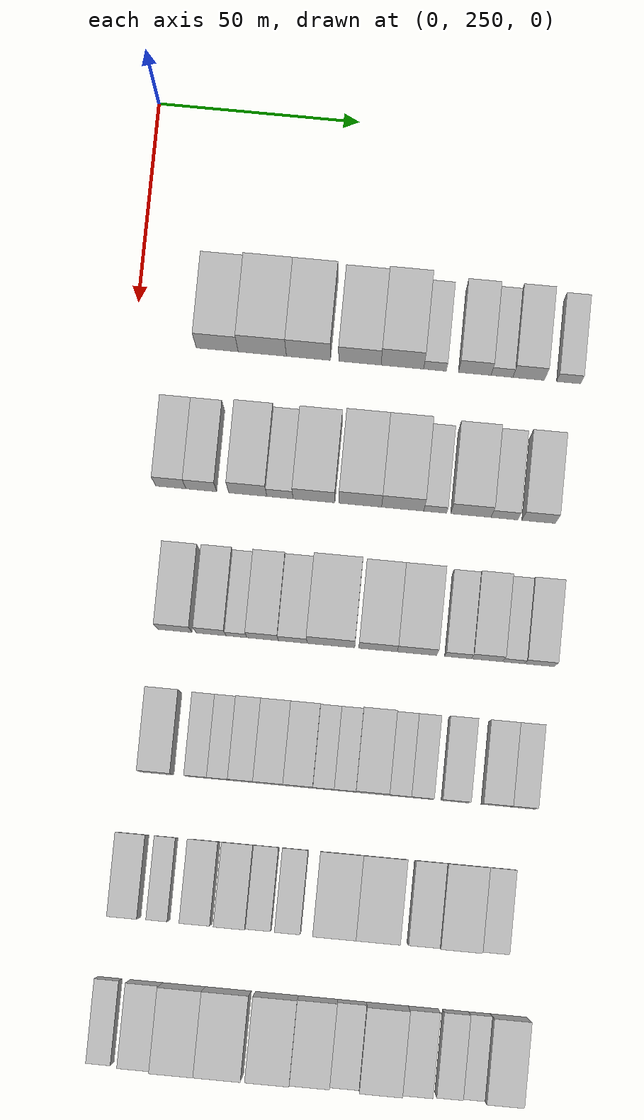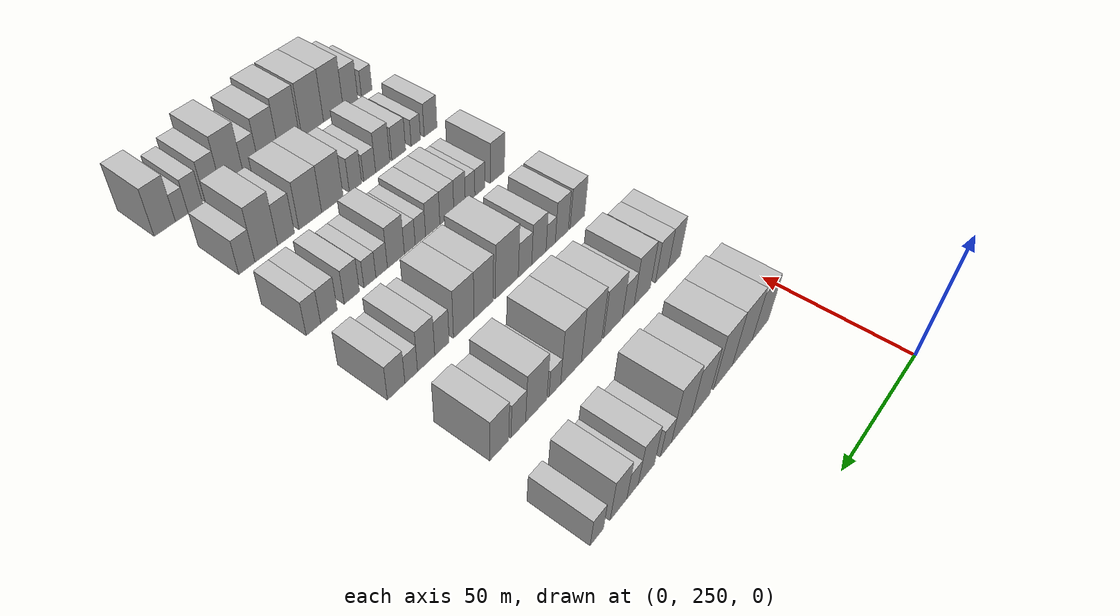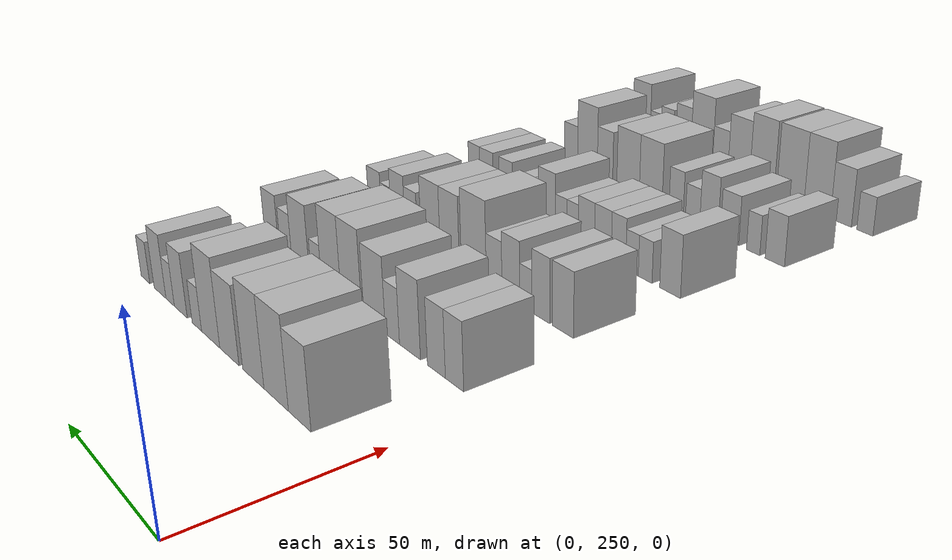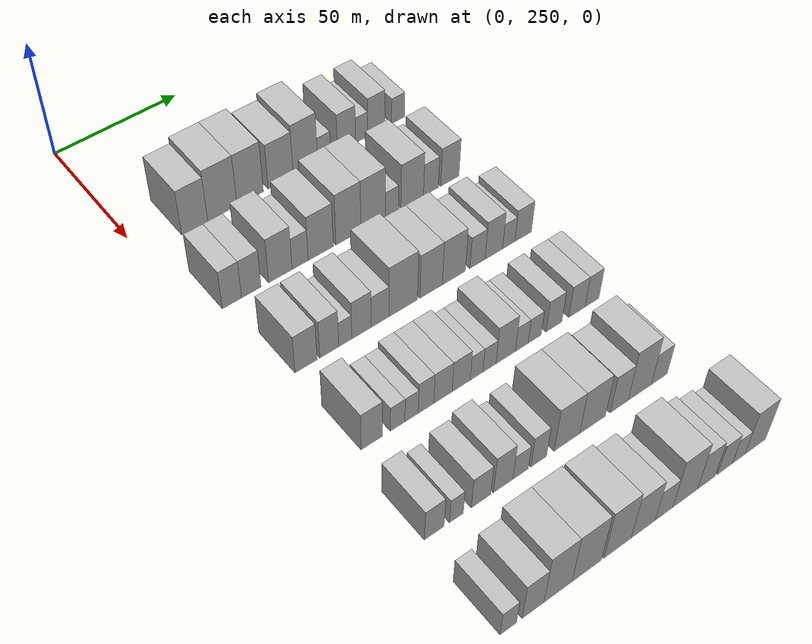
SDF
<sdf version="1.6">
 <world name="default">
  <model name="building_95">
   <static>1</static>
   <pose>50.0000 270.3964 0 0.000000 0.000000 0.000000</pose>
   <link name="link">
    <pose>0 0 10.50 0 0 0</pose>
    <collision name="collision"><geometry><box><size>20.0000 10.3634 21.0000</size></box></geometry></collision>
    <visual name="visual">
     <cast_shadows>0</cast_shadows>
     <geometry><box><size>20.0000 10.3634 21.0000</size></box></geometry>
     <material>
      <script>
       <uri>model://HANNAS_wall/materials/scripts</uri>
       <uri>model://HANNAS_wall/materials/textures</uri>
       <name>vrc/HANNAS_wall</name>
      </script>
     </material>
    </visual>
   </link>
  </model>
  <model name="building_96">
   <static>1</static>
   <pose>50.0000 281.5290 0 0.000000 0.000000 0.000000</pose>
   <link name="link">
    <pose>0 0 12.00 0 0 0</pose>
    <collision name="collision"><geometry><box><size>20.0000 11.9018 24.0000</size></box></geometry></collision>
    <visual name="visual">
     <cast_shadows>0</cast_shadows>
     <geometry><box><size>20.0000 11.9018 24.0000</size></box></geometry>
     <material>
      <script>
       <uri>model://HANNAS_wall/materials/scripts</uri>
       <uri>model://HANNAS_wall/materials/textures</uri>
       <name>vrc/HANNAS_wall</name>
      </script>
     </material>
    </visual>
   </link>
  </model>
  <model name="building_97">
   <static>1</static>
   <pose>50.0000 292.9263 0 0.000000 0.000000 0.000000</pose>
   <link name="link">
    <pose>0 0 12.00 0 0 0</pose>
    <collision name="collision"><geometry><box><size>20.0000 10.8927 24.0000</size></box></geometry></collision>
    <visual name="visual">
     <cast_shadows>0</cast_shadows>
     <geometry><box><size>20.0000 10.8927 24.0000</size></box></geometry>
     <material>
      <script>
       <uri>model://HANNAS_wall/materials/scripts</uri>
       <uri>model://HANNAS_wall/materials/textures</uri>
       <name>vrc/HANNAS_wall</name>
      </script>
     </material>
    </visual>
   </link>
  </model>
  <model name="building_98">
   <static>1</static>
   <pose>50.0000 305.6164 0 0.000000 0.000000 0.000000</pose>
   <link name="link">
    <pose>0 0 10.50 0 0 0</pose>
    <collision name="collision"><geometry><box><size>20.0000 10.4875 21.0000</size></box></geometry></collision>
    <visual name="visual">
     <cast_shadows>0</cast_shadows>
     <geometry><box><size>20.0000 10.4875 21.0000</size></box></geometry>
     <material>
      <script>
       <uri>model://HANNAS_wall/materials/scripts</uri>
       <uri>model://HANNAS_wall/materials/textures</uri>
       <name>vrc/HANNAS_wall</name>
      </script>
     </material>
    </visual>
   </link>
  </model>
  <model name="building_99">
   <static>1</static>
   <pose>50.0000 316.0999 0 0.000000 0.000000 0.000000</pose>
   <link name="link">
    <pose>0 0 12.00 0 0 0</pose>
    <collision name="collision"><geometry><box><size>20.0000 10.4796 24.0000</size></box></geometry></collision>
    <visual name="visual">
     <cast_shadows>0</cast_shadows>
     <geometry><box><size>20.0000 10.4796 24.0000</size></box></geometry>
     <material>
      <script>
       <uri>model://HANNAS_wall/materials/scripts</uri>
       <uri>model://HANNAS_wall/materials/textures</uri>
       <name>vrc/HANNAS_wall</name>
      </script>
     </material>
    </visual>
   </link>
  </model>
  <model name="building_100">
   <static>1</static>
   <pose>50.0000 324.1457 0 0.000000 0.000000 0.000000</pose>
   <link name="link">
    <pose>0 0 6.00 0 0 0</pose>
    <collision name="collision"><geometry><box><size>20.0000 5.6118 12.0000</size></box></geometry></collision>
    <visual name="visual">
     <cast_shadows>0</cast_shadows>
     <geometry><box><size>20.0000 5.6118 12.0000</size></box></geometry>
     <material>
      <script>
       <uri>model://HANNAS_wall/materials/scripts</uri>
       <uri>model://HANNAS_wall/materials/textures</uri>
       <name>vrc/HANNAS_wall</name>
      </script>
     </material>
    </visual>
   </link>
  </model>
  <model name="building_101">
   <static>1</static>
   <pose>50.0000 333.9687 0 0.000000 0.000000 0.000000</pose>
   <link name="link">
    <pose>0 0 9.00 0 0 0</pose>
    <collision name="collision"><geometry><box><size>20.0000 8.0344 18.0000</size></box></geometry></collision>
    <visual name="visual">
     <cast_shadows>0</cast_shadows>
     <geometry><box><size>20.0000 8.0344 18.0000</size></box></geometry>
     <material>
      <script>
       <uri>model://HANNAS_wall/materials/scripts</uri>
       <uri>model://HANNAS_wall/materials/textures</uri>
       <name>vrc/HANNAS_wall</name>
      </script>
     </material>
    </visual>
   </link>
  </model>
  <model name="building_102">
   <static>1</static>
   <pose>50.0000 340.6855 0 0.000000 0.000000 0.000000</pose>
   <link name="link">
    <pose>0 0 6.00 0 0 0</pose>
    <collision name="collision"><geometry><box><size>20.0000 5.3991 12.0000</size></box></geometry></collision>
    <visual name="visual">
     <cast_shadows>0</cast_shadows>
     <geometry><box><size>20.0000 5.3991 12.0000</size></box></geometry>
     <material>
      <script>
       <uri>model://HANNAS_wall/materials/scripts</uri>
       <uri>model://HANNAS_wall/materials/textures</uri>
       <name>vrc/HANNAS_wall</name>
      </script>
     </material>
    </visual>
   </link>
  </model>
  <model name="building_103">
   <static>1</static>
   <pose>50.0000 347.2678 0 0.000000 0.000000 0.000000</pose>
   <link name="link">
    <pose>0 0 9.00 0 0 0</pose>
    <collision name="collision"><geometry><box><size>20.0000 7.7656 18.0000</size></box></geometry></collision>
    <visual name="visual">
     <cast_shadows>0</cast_shadows>
     <geometry><box><size>20.0000 7.7656 18.0000</size></box></geometry>
     <material>
      <script>
       <uri>model://HANNAS_wall/materials/scripts</uri>
       <uri>model://HANNAS_wall/materials/textures</uri>
       <name>vrc/HANNAS_wall</name>
      </script>
     </material>
    </visual>
   </link>
  </model>
  <model name="building_104">
   <static>1</static>
   <pose>50.0000 357.1122 0 0.000000 0.000000 0.000000</pose>
   <link name="link">
    <pose>0 0 6.00 0 0 0</pose>
    <collision name="collision"><geometry><box><size>20.0000 5.9231 12.0000</size></box></geometry></collision>
    <visual name="visual">
     <cast_shadows>0</cast_shadows>
     <geometry><box><size>20.0000 5.9231 12.0000</size></box></geometry>
     <material>
      <script>
       <uri>model://HANNAS_wall/materials/scripts</uri>
       <uri>model://HANNAS_wall/materials/textures</uri>
       <name>vrc/HANNAS_wall</name>
      </script>
     </material>
    </visual>
   </link>
  </model>
  <model name="building_224">
   <static>1</static>
   <pose>85.0000 262.4137 0 0.000000 0.000000 0.000000</pose>
   <link name="link">
    <pose>0 0 9.00 0 0 0</pose>
    <collision name="collision"><geometry><box><size>20.0000 7.4490 18.0000</size></box></geometry></collision>
    <visual name="visual">
     <cast_shadows>0</cast_shadows>
     <geometry><box><size>20.0000 7.4490 18.0000</size></box></geometry>
     <material>
      <script>
       <uri>model://HANNAS_wall/materials/scripts</uri>
       <uri>model://HANNAS_wall/materials/textures</uri>
       <name>vrc/HANNAS_wall</name>
      </script>
     </material>
    </visual>
   </link>
  </model>
  <model name="building_225">
   <static>1</static>
   <pose>85.0000 269.9247 0 0.000000 0.000000 0.000000</pose>
   <link name="link">
    <pose>0 0 9.00 0 0 0</pose>
    <collision name="collision"><geometry><box><size>20.0000 7.5731 18.0000</size></box></geometry></collision>
    <visual name="visual">
     <cast_shadows>0</cast_shadows>
     <geometry><box><size>20.0000 7.5731 18.0000</size></box></geometry>
     <material>
      <script>
       <uri>model://HANNAS_wall/materials/scripts</uri>
       <uri>model://HANNAS_wall/materials/textures</uri>
       <name>vrc/HANNAS_wall</name>
      </script>
     </material>
    </visual>
   </link>
  </model>
  <model name="building_226">
   <static>1</static>
   <pose>85.0000 281.3738 0 0.000000 0.000000 0.000000</pose>
   <link name="link">
    <pose>0 0 10.50 0 0 0</pose>
    <collision name="collision"><geometry><box><size>20.0000 9.3250 21.0000</size></box></geometry></collision>
    <visual name="visual">
     <cast_shadows>0</cast_shadows>
     <geometry><box><size>20.0000 9.3250 21.0000</size></box></geometry>
     <material>
      <script>
       <uri>model://HANNAS_wall/materials/scripts</uri>
       <uri>model://HANNAS_wall/materials/textures</uri>
       <name>vrc/HANNAS_wall</name>
      </script>
     </material>
    </visual>
   </link>
  </model>
  <model name="building_227">
   <static>1</static>
   <pose>85.0000 289.2687 0 0.000000 0.000000 0.000000</pose>
   <link name="link">
    <pose>0 0 7.50 0 0 0</pose>
    <collision name="collision"><geometry><box><size>20.0000 6.4648 15.0000</size></box></geometry></collision>
    <visual name="visual">
     <cast_shadows>0</cast_shadows>
     <geometry><box><size>20.0000 6.4648 15.0000</size></box></geometry>
     <material>
      <script>
       <uri>model://HANNAS_wall/materials/scripts</uri>
       <uri>model://HANNAS_wall/materials/textures</uri>
       <name>vrc/HANNAS_wall</name>
      </script>
     </material>
    </visual>
   </link>
  </model>
  <model name="building_228">
   <static>1</static>
   <pose>85.0000 297.6382 0 0.000000 0.000000 0.000000</pose>
   <link name="link">
    <pose>0 0 10.50 0 0 0</pose>
    <collision name="collision"><geometry><box><size>20.0000 10.2743 21.0000</size></box></geometry></collision>
    <visual name="visual">
     <cast_shadows>0</cast_shadows>
     <geometry><box><size>20.0000 10.2743 21.0000</size></box></geometry>
     <material>
      <script>
       <uri>model://HANNAS_wall/materials/scripts</uri>
       <uri>model://HANNAS_wall/materials/textures</uri>
       <name>vrc/HANNAS_wall</name>
      </script>
     </material>
    </visual>
   </link>
  </model>
  <model name="building_229">
   <static>1</static>
   <pose>85.0000 309.0094 0 0.000000 0.000000 0.000000</pose>
   <link name="link">
    <pose>0 0 12.00 0 0 0</pose>
    <collision name="collision"><geometry><box><size>20.0000 10.4681 24.0000</size></box></geometry></collision>
    <visual name="visual">
     <cast_shadows>0</cast_shadows>
     <geometry><box><size>20.0000 10.4681 24.0000</size></box></geometry>
     <material>
      <script>
       <uri>model://HANNAS_wall/materials/scripts</uri>
       <uri>model://HANNAS_wall/materials/textures</uri>
       <name>vrc/HANNAS_wall</name>
      </script>
     </material>
    </visual>
   </link>
  </model>
  <model name="building_230">
   <static>1</static>
   <pose>85.0000 319.4148 0 0.000000 0.000000 0.000000</pose>
   <link name="link">
    <pose>0 0 12.00 0 0 0</pose>
    <collision name="collision"><geometry><box><size>20.0000 10.3427 24.0000</size></box></geometry></collision>
    <visual name="visual">
     <cast_shadows>0</cast_shadows>
     <geometry><box><size>20.0000 10.3427 24.0000</size></box></geometry>
     <material>
      <script>
       <uri>model://HANNAS_wall/materials/scripts</uri>
       <uri>model://HANNAS_wall/materials/textures</uri>
       <name>vrc/HANNAS_wall</name>
      </script>
     </material>
    </visual>
   </link>
  </model>
  <model name="building_231">
   <static>1</static>
   <pose>85.0000 327.4046 0 0.000000 0.000000 0.000000</pose>
   <link name="link">
    <pose>0 0 6.00 0 0 0</pose>
    <collision name="collision"><geometry><box><size>20.0000 5.6370 12.0000</size></box></geometry></collision>
    <visual name="visual">
     <cast_shadows>0</cast_shadows>
     <geometry><box><size>20.0000 5.6370 12.0000</size></box></geometry>
     <material>
      <script>
       <uri>model://HANNAS_wall/materials/scripts</uri>
       <uri>model://HANNAS_wall/materials/textures</uri>
       <name>vrc/HANNAS_wall</name>
      </script>
     </material>
    </visual>
   </link>
  </model>
  <model name="building_232">
   <static>1</static>
   <pose>85.0000 336.1703 0 0.000000 0.000000 0.000000</pose>
   <link name="link">
    <pose>0 0 10.50 0 0 0</pose>
    <collision name="collision"><geometry><box><size>20.0000 9.8945 21.0000</size></box></geometry></collision>
    <visual name="visual">
     <cast_shadows>0</cast_shadows>
     <geometry><box><size>20.0000 9.8945 21.0000</size></box></geometry>
     <material>
      <script>
       <uri>model://HANNAS_wall/materials/scripts</uri>
       <uri>model://HANNAS_wall/materials/textures</uri>
       <name>vrc/HANNAS_wall</name>
      </script>
     </material>
    </visual>
   </link>
  </model>
  <model name="building_233">
   <static>1</static>
   <pose>85.0000 344.4108 0 0.000000 0.000000 0.000000</pose>
   <link name="link">
    <pose>0 0 7.50 0 0 0</pose>
    <collision name="collision"><geometry><box><size>20.0000 6.5864 15.0000</size></box></geometry></collision>
    <visual name="visual">
     <cast_shadows>0</cast_shadows>
     <geometry><box><size>20.0000 6.5864 15.0000</size></box></geometry>
     <material>
      <script>
       <uri>model://HANNAS_wall/materials/scripts</uri>
       <uri>model://HANNAS_wall/materials/textures</uri>
       <name>vrc/HANNAS_wall</name>
      </script>
     </material>
    </visual>
   </link>
  </model>
  <model name="building_234">
   <static>1</static>
   <pose>85.0000 352.8083 0 0.000000 0.000000 0.000000</pose>
   <link name="link">
    <pose>0 0 9.00 0 0 0</pose>
    <collision name="collision"><geometry><box><size>20.0000 8.2086 18.0000</size></box></geometry></collision>
    <visual name="visual">
     <cast_shadows>0</cast_shadows>
     <geometry><box><size>20.0000 8.2086 18.0000</size></box></geometry>
     <material>
      <script>
       <uri>model://HANNAS_wall/materials/scripts</uri>
       <uri>model://HANNAS_wall/materials/textures</uri>
       <name>vrc/HANNAS_wall</name>
      </script>
     </material>
    </visual>
   </link>
  </model>
  <model name="building_353">
   <static>1</static>
   <pose>120.0000 266.9054 0 0.000000 0.000000 0.000000</pose>
   <link name="link">
    <pose>0 0 9.00 0 0 0</pose>
    <collision name="collision"><geometry><box><size>20.0000 8.4240 18.0000</size></box></geometry></collision>
    <visual name="visual">
     <cast_shadows>0</cast_shadows>
     <geometry><box><size>20.0000 8.4240 18.0000</size></box></geometry>
     <material>
      <script>
       <uri>model://HANNAS_wall/materials/scripts</uri>
       <uri>model://HANNAS_wall/materials/textures</uri>
       <name>vrc/HANNAS_wall</name>
      </script>
     </material>
    </visual>
   </link>
  </model>
  <model name="building_354">
   <static>1</static>
   <pose>120.0000 275.7824 0 0.000000 0.000000 0.000000</pose>
   <link name="link">
    <pose>0 0 9.00 0 0 0</pose>
    <collision name="collision"><geometry><box><size>20.0000 7.3300 18.0000</size></box></geometry></collision>
    <visual name="visual">
     <cast_shadows>0</cast_shadows>
     <geometry><box><size>20.0000 7.3300 18.0000</size></box></geometry>
     <material>
      <script>
       <uri>model://HANNAS_wall/materials/scripts</uri>
       <uri>model://HANNAS_wall/materials/textures</uri>
       <name>vrc/HANNAS_wall</name>
      </script>
     </material>
    </visual>
   </link>
  </model>
  <model name="building_355">
   <static>1</static>
   <pose>120.0000 282.0024 0 0.000000 0.000000 0.000000</pose>
   <link name="link">
    <pose>0 0 6.00 0 0 0</pose>
    <collision name="collision"><geometry><box><size>20.0000 5.1100 12.0000</size></box></geometry></collision>
    <visual name="visual">
     <cast_shadows>0</cast_shadows>
     <geometry><box><size>20.0000 5.1100 12.0000</size></box></geometry>
     <material>
      <script>
       <uri>model://HANNAS_wall/materials/scripts</uri>
       <uri>model://HANNAS_wall/materials/textures</uri>
       <name>vrc/HANNAS_wall</name>
      </script>
     </material>
    </visual>
   </link>
  </model>
  <model name="building_356">
   <static>1</static>
   <pose>120.0000 288.4092 0 0.000000 0.000000 0.000000</pose>
   <link name="link">
    <pose>0 0 9.00 0 0 0</pose>
    <collision name="collision"><geometry><box><size>20.0000 7.7036 18.0000</size></box></geometry></collision>
    <visual name="visual">
     <cast_shadows>0</cast_shadows>
     <geometry><box><size>20.0000 7.7036 18.0000</size></box></geometry>
     <material>
      <script>
       <uri>model://HANNAS_wall/materials/scripts</uri>
       <uri>model://HANNAS_wall/materials/textures</uri>
       <name>vrc/HANNAS_wall</name>
      </script>
     </material>
    </visual>
   </link>
  </model>
  <model name="building_357">
   <static>1</static>
   <pose>120.0000 295.7735 0 0.000000 0.000000 0.000000</pose>
   <link name="link">
    <pose>0 0 7.50 0 0 0</pose>
    <collision name="collision"><geometry><box><size>20.0000 7.0251 15.0000</size></box></geometry></collision>
    <visual name="visual">
     <cast_shadows>0</cast_shadows>
     <geometry><box><size>20.0000 7.0251 15.0000</size></box></geometry>
     <material>
      <script>
       <uri>model://HANNAS_wall/materials/scripts</uri>
       <uri>model://HANNAS_wall/materials/textures</uri>
       <name>vrc/HANNAS_wall</name>
      </script>
     </material>
    </visual>
   </link>
  </model>
  <model name="building_358">
   <static>1</static>
   <pose>120.0000 305.1087 0 0.000000 0.000000 0.000000</pose>
   <link name="link">
    <pose>0 0 12.00 0 0 0</pose>
    <collision name="collision"><geometry><box><size>20.0000 11.6453 24.0000</size></box></geometry></collision>
    <visual name="visual">
     <cast_shadows>0</cast_shadows>
     <geometry><box><size>20.0000 11.6453 24.0000</size></box></geometry>
     <material>
      <script>
       <uri>model://HANNAS_wall/materials/scripts</uri>
       <uri>model://HANNAS_wall/materials/textures</uri>
       <name>vrc/HANNAS_wall</name>
      </script>
     </material>
    </visual>
   </link>
  </model>
  <model name="building_359">
   <static>1</static>
   <pose>120.0000 316.6095 0 0.000000 0.000000 0.000000</pose>
   <link name="link">
    <pose>0 0 10.50 0 0 0</pose>
    <collision name="collision"><geometry><box><size>20.0000 9.3562 21.0000</size></box></geometry></collision>
    <visual name="visual">
     <cast_shadows>0</cast_shadows>
     <geometry><box><size>20.0000 9.3562 21.0000</size></box></geometry>
     <material>
      <script>
       <uri>model://HANNAS_wall/materials/scripts</uri>
       <uri>model://HANNAS_wall/materials/textures</uri>
       <name>vrc/HANNAS_wall</name>
      </script>
     </material>
    </visual>
   </link>
  </model>
  <model name="building_360">
   <static>1</static>
   <pose>120.0000 326.1139 0 0.000000 0.000000 0.000000</pose>
   <link name="link">
    <pose>0 0 10.50 0 0 0</pose>
    <collision name="collision"><geometry><box><size>20.0000 9.6527 21.0000</size></box></geometry></collision>
    <visual name="visual">
     <cast_shadows>0</cast_shadows>
     <geometry><box><size>20.0000 9.6527 21.0000</size></box></geometry>
     <material>
      <script>
       <uri>model://HANNAS_wall/materials/scripts</uri>
       <uri>model://HANNAS_wall/materials/textures</uri>
       <name>vrc/HANNAS_wall</name>
      </script>
     </material>
    </visual>
   </link>
  </model>
  <model name="building_361">
   <static>1</static>
   <pose>120.0000 336.1872 0 0.000000 0.000000 0.000000</pose>
   <link name="link">
    <pose>0 0 7.50 0 0 0</pose>
    <collision name="collision"><geometry><box><size>20.0000 6.4938 15.0000</size></box></geometry></collision>
    <visual name="visual">
     <cast_shadows>0</cast_shadows>
     <geometry><box><size>20.0000 6.4938 15.0000</size></box></geometry>
     <material>
      <script>
       <uri>model://HANNAS_wall/materials/scripts</uri>
       <uri>model://HANNAS_wall/materials/textures</uri>
       <name>vrc/HANNAS_wall</name>
      </script>
     </material>
    </visual>
   </link>
  </model>
  <model name="building_362">
   <static>1</static>
   <pose>120.0000 343.2327 0 0.000000 0.000000 0.000000</pose>
   <link name="link">
    <pose>0 0 9.00 0 0 0</pose>
    <collision name="collision"><geometry><box><size>20.0000 7.5972 18.0000</size></box></geometry></collision>
    <visual name="visual">
     <cast_shadows>0</cast_shadows>
     <geometry><box><size>20.0000 7.5972 18.0000</size></box></geometry>
     <material>
      <script>
       <uri>model://HANNAS_wall/materials/scripts</uri>
       <uri>model://HANNAS_wall/materials/textures</uri>
       <name>vrc/HANNAS_wall</name>
      </script>
     </material>
    </visual>
   </link>
  </model>
  <model name="building_363">
   <static>1</static>
   <pose>120.0000 349.7400 0 0.000000 0.000000 0.000000</pose>
   <link name="link">
    <pose>0 0 6.00 0 0 0</pose>
    <collision name="collision"><geometry><box><size>20.0000 5.4174 12.0000</size></box></geometry></collision>
    <visual name="visual">
     <cast_shadows>0</cast_shadows>
     <geometry><box><size>20.0000 5.4174 12.0000</size></box></geometry>
     <material>
      <script>
       <uri>model://HANNAS_wall/materials/scripts</uri>
       <uri>model://HANNAS_wall/materials/textures</uri>
       <name>vrc/HANNAS_wall</name>
      </script>
     </material>
    </visual>
   </link>
  </model>
  <model name="building_364">
   <static>1</static>
   <pose>120.0000 356.1138 0 0.000000 0.000000 0.000000</pose>
   <link name="link">
    <pose>0 0 7.50 0 0 0</pose>
    <collision name="collision"><geometry><box><size>20.0000 7.3302 15.0000</size></box></geometry></collision>
    <visual name="visual">
     <cast_shadows>0</cast_shadows>
     <geometry><box><size>20.0000 7.3302 15.0000</size></box></geometry>
     <material>
      <script>
       <uri>model://HANNAS_wall/materials/scripts</uri>
       <uri>model://HANNAS_wall/materials/textures</uri>
       <name>vrc/HANNAS_wall</name>
      </script>
     </material>
    </visual>
   </link>
  </model>
  <model name="building_480">
   <static>1</static>
   <pose>155.0000 266.1292 0 0.000000 0.000000 0.000000</pose>
   <link name="link">
    <pose>0 0 9.00 0 0 0</pose>
    <collision name="collision"><geometry><box><size>20.0000 7.9411 18.0000</size></box></geometry></collision>
    <visual name="visual">
     <cast_shadows>0</cast_shadows>
     <geometry><box><size>20.0000 7.9411 18.0000</size></box></geometry>
     <material>
      <script>
       <uri>model://HANNAS_wall/materials/scripts</uri>
       <uri>model://HANNAS_wall/materials/textures</uri>
       <name>vrc/HANNAS_wall</name>
      </script>
     </material>
    </visual>
   </link>
  </model>
  <model name="building_481">
   <static>1</static>
   <pose>155.0000 275.8325 0 0.000000 0.000000 0.000000</pose>
   <link name="link">
    <pose>0 0 6.00 0 0 0</pose>
    <collision name="collision"><geometry><box><size>20.0000 5.4655 12.0000</size></box></geometry></collision>
    <visual name="visual">
     <cast_shadows>0</cast_shadows>
     <geometry><box><size>20.0000 5.4655 12.0000</size></box></geometry>
     <material>
      <script>
       <uri>model://HANNAS_wall/materials/scripts</uri>
       <uri>model://HANNAS_wall/materials/textures</uri>
       <name>vrc/HANNAS_wall</name>
      </script>
     </material>
    </visual>
   </link>
  </model>
  <model name="building_482">
   <static>1</static>
   <pose>155.0000 281.1368 0 0.000000 0.000000 0.000000</pose>
   <link name="link">
    <pose>0 0 6.00 0 0 0</pose>
    <collision name="collision"><geometry><box><size>20.0000 5.1432 12.0000</size></box></geometry></collision>
    <visual name="visual">
     <cast_shadows>0</cast_shadows>
     <geometry><box><size>20.0000 5.1432 12.0000</size></box></geometry>
     <material>
      <script>
       <uri>model://HANNAS_wall/materials/scripts</uri>
       <uri>model://HANNAS_wall/materials/textures</uri>
       <name>vrc/HANNAS_wall</name>
      </script>
     </material>
    </visual>
   </link>
  </model>
  <model name="building_483">
   <static>1</static>
   <pose>155.0000 286.7205 0 0.000000 0.000000 0.000000</pose>
   <link name="link">
    <pose>0 0 7.50 0 0 0</pose>
    <collision name="collision"><geometry><box><size>20.0000 6.0241 15.0000</size></box></geometry></collision>
    <visual name="visual">
     <cast_shadows>0</cast_shadows>
     <geometry><box><size>20.0000 6.0241 15.0000</size></box></geometry>
     <material>
      <script>
       <uri>model://HANNAS_wall/materials/scripts</uri>
       <uri>model://HANNAS_wall/materials/textures</uri>
       <name>vrc/HANNAS_wall</name>
      </script>
     </material>
    </visual>
   </link>
  </model>
  <model name="building_484">
   <static>1</static>
   <pose>155.0000 293.3294 0 0.000000 0.000000 0.000000</pose>
   <link name="link">
    <pose>0 0 7.50 0 0 0</pose>
    <collision name="collision"><geometry><box><size>20.0000 7.1936 15.0000</size></box></geometry></collision>
    <visual name="visual">
     <cast_shadows>0</cast_shadows>
     <geometry><box><size>20.0000 7.1936 15.0000</size></box></geometry>
     <material>
      <script>
       <uri>model://HANNAS_wall/materials/scripts</uri>
       <uri>model://HANNAS_wall/materials/textures</uri>
       <name>vrc/HANNAS_wall</name>
      </script>
     </material>
    </visual>
   </link>
  </model>
  <model name="building_485">
   <static>1</static>
   <pose>155.0000 300.5182 0 0.000000 0.000000 0.000000</pose>
   <link name="link">
    <pose>0 0 7.50 0 0 0</pose>
    <collision name="collision"><geometry><box><size>20.0000 7.1840 15.0000</size></box></geometry></collision>
    <visual name="visual">
     <cast_shadows>0</cast_shadows>
     <geometry><box><size>20.0000 7.1840 15.0000</size></box></geometry>
     <material>
      <script>
       <uri>model://HANNAS_wall/materials/scripts</uri>
       <uri>model://HANNAS_wall/materials/textures</uri>
       <name>vrc/HANNAS_wall</name>
      </script>
     </material>
    </visual>
   </link>
  </model>
  <model name="building_486">
   <static>1</static>
   <pose>155.0000 306.6681 0 0.000000 0.000000 0.000000</pose>
   <link name="link">
    <pose>0 0 6.00 0 0 0</pose>
    <collision name="collision"><geometry><box><size>20.0000 5.1159 12.0000</size></box></geometry></collision>
    <visual name="visual">
     <cast_shadows>0</cast_shadows>
     <geometry><box><size>20.0000 5.1159 12.0000</size></box></geometry>
     <material>
      <script>
       <uri>model://HANNAS_wall/materials/scripts</uri>
       <uri>model://HANNAS_wall/materials/textures</uri>
       <name>vrc/HANNAS_wall</name>
      </script>
     </material>
    </visual>
   </link>
  </model>
  <model name="building_487">
   <static>1</static>
   <pose>155.0000 311.8543 0 0.000000 0.000000 0.000000</pose>
   <link name="link">
    <pose>0 0 6.00 0 0 0</pose>
    <collision name="collision"><geometry><box><size>20.0000 5.2565 12.0000</size></box></geometry></collision>
    <visual name="visual">
     <cast_shadows>0</cast_shadows>
     <geometry><box><size>20.0000 5.2565 12.0000</size></box></geometry>
     <material>
      <script>
       <uri>model://HANNAS_wall/materials/scripts</uri>
       <uri>model://HANNAS_wall/materials/textures</uri>
       <name>vrc/HANNAS_wall</name>
      </script>
     </material>
    </visual>
   </link>
  </model>
  <model name="building_488">
   <static>1</static>
   <pose>155.0000 318.4847 0 0.000000 0.000000 0.000000</pose>
   <link name="link">
    <pose>0 0 9.00 0 0 0</pose>
    <collision name="collision"><geometry><box><size>20.0000 8.0043 18.0000</size></box></geometry></collision>
    <visual name="visual">
     <cast_shadows>0</cast_shadows>
     <geometry><box><size>20.0000 8.0043 18.0000</size></box></geometry>
     <material>
      <script>
       <uri>model://HANNAS_wall/materials/scripts</uri>
       <uri>model://HANNAS_wall/materials/textures</uri>
       <name>vrc/HANNAS_wall</name>
      </script>
     </material>
    </visual>
   </link>
  </model>
  <model name="building_489">
   <static>1</static>
   <pose>155.0000 325.1532 0 0.000000 0.000000 0.000000</pose>
   <link name="link">
    <pose>0 0 6.00 0 0 0</pose>
    <collision name="collision"><geometry><box><size>20.0000 5.3328 12.0000</size></box></geometry></collision>
    <visual name="visual">
     <cast_shadows>0</cast_shadows>
     <geometry><box><size>20.0000 5.3328 12.0000</size></box></geometry>
     <material>
      <script>
       <uri>model://HANNAS_wall/materials/scripts</uri>
       <uri>model://HANNAS_wall/materials/textures</uri>
       <name>vrc/HANNAS_wall</name>
      </script>
     </material>
    </visual>
   </link>
  </model>
  <model name="building_490">
   <static>1</static>
   <pose>155.0000 330.5371 0 0.000000 0.000000 0.000000</pose>
   <link name="link">
    <pose>0 0 6.00 0 0 0</pose>
    <collision name="collision"><geometry><box><size>20.0000 5.4350 12.0000</size></box></geometry></collision>
    <visual name="visual">
     <cast_shadows>0</cast_shadows>
     <geometry><box><size>20.0000 5.4350 12.0000</size></box></geometry>
     <material>
      <script>
       <uri>model://HANNAS_wall/materials/scripts</uri>
       <uri>model://HANNAS_wall/materials/textures</uri>
       <name>vrc/HANNAS_wall</name>
      </script>
     </material>
    </visual>
   </link>
  </model>
  <model name="building_491">
   <static>1</static>
   <pose>155.0000 338.6219 0 0.000000 0.000000 0.000000</pose>
   <link name="link">
    <pose>0 0 7.50 0 0 0</pose>
    <collision name="collision"><geometry><box><size>20.0000 6.7346 15.0000</size></box></geometry></collision>
    <visual name="visual">
     <cast_shadows>0</cast_shadows>
     <geometry><box><size>20.0000 6.7346 15.0000</size></box></geometry>
     <material>
      <script>
       <uri>model://HANNAS_wall/materials/scripts</uri>
       <uri>model://HANNAS_wall/materials/textures</uri>
       <name>vrc/HANNAS_wall</name>
      </script>
     </material>
    </visual>
   </link>
  </model>
  <model name="building_492">
   <static>1</static>
   <pose>155.0000 348.5229 0 0.000000 0.000000 0.000000</pose>
   <link name="link">
    <pose>0 0 7.50 0 0 0</pose>
    <collision name="collision"><geometry><box><size>20.0000 7.0675 15.0000</size></box></geometry></collision>
    <visual name="visual">
     <cast_shadows>0</cast_shadows>
     <geometry><box><size>20.0000 7.0675 15.0000</size></box></geometry>
     <material>
      <script>
       <uri>model://HANNAS_wall/materials/scripts</uri>
       <uri>model://HANNAS_wall/materials/textures</uri>
       <name>vrc/HANNAS_wall</name>
      </script>
     </material>
    </visual>
   </link>
  </model>
  <model name="building_493">
   <static>1</static>
   <pose>155.0000 355.0664 0 0.000000 0.000000 0.000000</pose>
   <link name="link">
    <pose>0 0 7.50 0 0 0</pose>
    <collision name="collision"><geometry><box><size>20.0000 6.0194 15.0000</size></box></geometry></collision>
    <visual name="visual">
     <cast_shadows>0</cast_shadows>
     <geometry><box><size>20.0000 6.0194 15.0000</size></box></geometry>
     <material>
      <script>
       <uri>model://HANNAS_wall/materials/scripts</uri>
       <uri>model://HANNAS_wall/materials/textures</uri>
       <name>vrc/HANNAS_wall</name>
      </script>
     </material>
    </visual>
   </link>
  </model>
  <model name="building_608">
   <static>1</static>
   <pose>190.0000 261.9607 0 0.000000 0.000000 0.000000</pose>
   <link name="link">
    <pose>0 0 7.50 0 0 0</pose>
    <collision name="collision"><geometry><box><size>20.0000 7.1599 15.0000</size></box></geometry></collision>
    <visual name="visual">
     <cast_shadows>0</cast_shadows>
     <geometry><box><size>20.0000 7.1599 15.0000</size></box></geometry>
     <material>
      <script>
       <uri>model://HANNAS_wall/materials/scripts</uri>
       <uri>model://HANNAS_wall/materials/textures</uri>
       <name>vrc/HANNAS_wall</name>
      </script>
     </material>
    </visual>
   </link>
  </model>
  <model name="building_609">
   <static>1</static>
   <pose>190.0000 270.0792 0 0.000000 0.000000 0.000000</pose>
   <link name="link">
    <pose>0 0 6.00 0 0 0</pose>
    <collision name="collision"><geometry><box><size>20.0000 5.0772 12.0000</size></box></geometry></collision>
    <visual name="visual">
     <cast_shadows>0</cast_shadows>
     <geometry><box><size>20.0000 5.0772 12.0000</size></box></geometry>
     <material>
      <script>
       <uri>model://HANNAS_wall/materials/scripts</uri>
       <uri>model://HANNAS_wall/materials/textures</uri>
       <name>vrc/HANNAS_wall</name>
      </script>
     </material>
    </visual>
   </link>
  </model>
  <model name="building_610">
   <static>1</static>
   <pose>190.0000 279.2635 0 0.000000 0.000000 0.000000</pose>
   <link name="link">
    <pose>0 0 7.50 0 0 0</pose>
    <collision name="collision"><geometry><box><size>20.0000 7.2913 15.0000</size></box></geometry></collision>
    <visual name="visual">
     <cast_shadows>0</cast_shadows>
     <geometry><box><size>20.0000 7.2913 15.0000</size></box></geometry>
     <material>
      <script>
       <uri>model://HANNAS_wall/materials/scripts</uri>
       <uri>model://HANNAS_wall/materials/textures</uri>
       <name>vrc/HANNAS_wall</name>
      </script>
     </material>
    </visual>
   </link>
  </model>
  <model name="building_611">
   <static>1</static>
   <pose>190.0000 287.6242 0 0.000000 0.000000 0.000000</pose>
   <link name="link">
    <pose>0 0 9.00 0 0 0</pose>
    <collision name="collision"><geometry><box><size>20.0000 7.4302 18.0000</size></box></geometry></collision>
    <visual name="visual">
     <cast_shadows>0</cast_shadows>
     <geometry><box><size>20.0000 7.4302 18.0000</size></box></geometry>
     <material>
      <script>
       <uri>model://HANNAS_wall/materials/scripts</uri>
       <uri>model://HANNAS_wall/materials/textures</uri>
       <name>vrc/HANNAS_wall</name>
      </script>
     </material>
    </visual>
   </link>
  </model>
  <model name="building_612">
   <static>1</static>
   <pose>190.0000 294.3299 0 0.000000 0.000000 0.000000</pose>
   <link name="link">
    <pose>0 0 6.00 0 0 0</pose>
    <collision name="collision"><geometry><box><size>20.0000 5.9811 12.0000</size></box></geometry></collision>
    <visual name="visual">
     <cast_shadows>0</cast_shadows>
     <geometry><box><size>20.0000 5.9811 12.0000</size></box></geometry>
     <material>
      <script>
       <uri>model://HANNAS_wall/materials/scripts</uri>
       <uri>model://HANNAS_wall/materials/textures</uri>
       <name>vrc/HANNAS_wall</name>
      </script>
     </material>
    </visual>
   </link>
  </model>
  <model name="building_613">
   <static>1</static>
   <pose>190.0000 301.3870 0 0.000000 0.000000 0.000000</pose>
   <link name="link">
    <pose>0 0 7.50 0 0 0</pose>
    <collision name="collision"><geometry><box><size>20.0000 6.1332 15.0000</size></box></geometry></collision>
    <visual name="visual">
     <cast_shadows>0</cast_shadows>
     <geometry><box><size>20.0000 6.1332 15.0000</size></box></geometry>
     <material>
      <script>
       <uri>model://HANNAS_wall/materials/scripts</uri>
       <uri>model://HANNAS_wall/materials/textures</uri>
       <name>vrc/HANNAS_wall</name>
      </script>
     </material>
    </visual>
   </link>
  </model>
  <model name="building_614">
   <static>1</static>
   <pose>190.0000 312.5801 0 0.000000 0.000000 0.000000</pose>
   <link name="link">
    <pose>0 0 10.50 0 0 0</pose>
    <collision name="collision"><geometry><box><size>20.0000 10.2530 21.0000</size></box></geometry></collision>
    <visual name="visual">
     <cast_shadows>0</cast_shadows>
     <geometry><box><size>20.0000 10.2530 21.0000</size></box></geometry>
     <material>
      <script>
       <uri>model://HANNAS_wall/materials/scripts</uri>
       <uri>model://HANNAS_wall/materials/textures</uri>
       <name>vrc/HANNAS_wall</name>
      </script>
     </material>
    </visual>
   </link>
  </model>
  <model name="building_615">
   <static>1</static>
   <pose>190.0000 322.9421 0 0.000000 0.000000 0.000000</pose>
   <link name="link">
    <pose>0 0 10.50 0 0 0</pose>
    <collision name="collision"><geometry><box><size>20.0000 10.4709 21.0000</size></box></geometry></collision>
    <visual name="visual">
     <cast_shadows>0</cast_shadows>
     <geometry><box><size>20.0000 10.4709 21.0000</size></box></geometry>
     <material>
      <script>
       <uri>model://HANNAS_wall/materials/scripts</uri>
       <uri>model://HANNAS_wall/materials/textures</uri>
       <name>vrc/HANNAS_wall</name>
      </script>
     </material>
    </visual>
   </link>
  </model>
  <model name="building_616">
   <static>1</static>
   <pose>190.0000 333.9147 0 0.000000 0.000000 0.000000</pose>
   <link name="link">
    <pose>0 0 9.00 0 0 0</pose>
    <collision name="collision"><geometry><box><size>20.0000 7.4743 18.0000</size></box></geometry></collision>
    <visual name="visual">
     <cast_shadows>0</cast_shadows>
     <geometry><box><size>20.0000 7.4743 18.0000</size></box></geometry>
     <material>
      <script>
       <uri>model://HANNAS_wall/materials/scripts</uri>
       <uri>model://HANNAS_wall/materials/textures</uri>
       <name>vrc/HANNAS_wall</name>
      </script>
     </material>
    </visual>
   </link>
  </model>
  <model name="building_617">
   <static>1</static>
   <pose>190.0000 342.5589 0 0.000000 0.000000 0.000000</pose>
   <link name="link">
    <pose>0 0 12.00 0 0 0</pose>
    <collision name="collision"><geometry><box><size>20.0000 9.8143 24.0000</size></box></geometry></collision>
    <visual name="visual">
     <cast_shadows>0</cast_shadows>
     <geometry><box><size>20.0000 9.8143 24.0000</size></box></geometry>
     <material>
      <script>
       <uri>model://HANNAS_wall/materials/scripts</uri>
       <uri>model://HANNAS_wall/materials/textures</uri>
       <name>vrc/HANNAS_wall</name>
      </script>
     </material>
    </visual>
   </link>
  </model>
  <model name="building_618">
   <static>1</static>
   <pose>190.0000 350.8779 0 0.000000 0.000000 0.000000</pose>
   <link name="link">
    <pose>0 0 7.50 0 0 0</pose>
    <collision name="collision"><geometry><box><size>20.0000 6.8236 15.0000</size></box></geometry></collision>
    <visual name="visual">
     <cast_shadows>0</cast_shadows>
     <geometry><box><size>20.0000 6.8236 15.0000</size></box></geometry>
     <material>
      <script>
       <uri>model://HANNAS_wall/materials/scripts</uri>
       <uri>model://HANNAS_wall/materials/textures</uri>
       <name>vrc/HANNAS_wall</name>
      </script>
     </material>
    </visual>
   </link>
  </model>
  <model name="building_734">
   <static>1</static>
   <pose>225.0000 259.6502 0 0.000000 0.000000 0.000000</pose>
   <link name="link">
    <pose>0 0 6.00 0 0 0</pose>
    <collision name="collision"><geometry><box><size>20.0000 5.8556 12.0000</size></box></geometry></collision>
    <visual name="visual">
     <cast_shadows>0</cast_shadows>
     <geometry><box><size>20.0000 5.8556 12.0000</size></box></geometry>
     <material>
      <script>
       <uri>model://HANNAS_wall/materials/scripts</uri>
       <uri>model://HANNAS_wall/materials/textures</uri>
       <name>vrc/HANNAS_wall</name>
      </script>
     </material>
    </visual>
   </link>
  </model>
  <model name="building_735">
   <static>1</static>
   <pose>225.0000 268.5325 0 0.000000 0.000000 0.000000</pose>
   <link name="link">
    <pose>0 0 9.00 0 0 0</pose>
    <collision name="collision"><geometry><box><size>20.0000 7.9091 18.0000</size></box></geometry></collision>
    <visual name="visual">
     <cast_shadows>0</cast_shadows>
     <geometry><box><size>20.0000 7.9091 18.0000</size></box></geometry>
     <material>
      <script>
       <uri>model://HANNAS_wall/materials/scripts</uri>
       <uri>model://HANNAS_wall/materials/textures</uri>
       <name>vrc/HANNAS_wall</name>
      </script>
     </material>
    </visual>
   </link>
  </model>
  <model name="building_736">
   <static>1</static>
   <pose>225.0000 277.6535 0 0.000000 0.000000 0.000000</pose>
   <link name="link">
    <pose>0 0 12.00 0 0 0</pose>
    <collision name="collision"><geometry><box><size>20.0000 10.3329 24.0000</size></box></geometry></collision>
    <visual name="visual">
     <cast_shadows>0</cast_shadows>
     <geometry><box><size>20.0000 10.3329 24.0000</size></box></geometry>
     <material>
      <script>
       <uri>model://HANNAS_wall/materials/scripts</uri>
       <uri>model://HANNAS_wall/materials/textures</uri>
       <name>vrc/HANNAS_wall</name>
      </script>
     </material>
    </visual>
   </link>
  </model>
  <model name="building_737">
   <static>1</static>
   <pose>225.0000 288.3693 0 0.000000 0.000000 0.000000</pose>
   <link name="link">
    <pose>0 0 12.00 0 0 0</pose>
    <collision name="collision"><geometry><box><size>20.0000 11.0986 24.0000</size></box></geometry></collision>
    <visual name="visual">
     <cast_shadows>0</cast_shadows>
     <geometry><box><size>20.0000 11.0986 24.0000</size></box></geometry>
     <material>
      <script>
       <uri>model://HANNAS_wall/materials/scripts</uri>
       <uri>model://HANNAS_wall/materials/textures</uri>
       <name>vrc/HANNAS_wall</name>
      </script>
     </material>
    </visual>
   </link>
  </model>
  <model name="building_738">
   <static>1</static>
   <pose>225.0000 300.1173 0 0.000000 0.000000 0.000000</pose>
   <link name="link">
    <pose>0 0 12.00 0 0 0</pose>
    <collision name="collision"><geometry><box><size>20.0000 10.3973 24.0000</size></box></geometry></collision>
    <visual name="visual">
     <cast_shadows>0</cast_shadows>
     <geometry><box><size>20.0000 10.3973 24.0000</size></box></geometry>
     <material>
      <script>
       <uri>model://HANNAS_wall/materials/scripts</uri>
       <uri>model://HANNAS_wall/materials/textures</uri>
       <name>vrc/HANNAS_wall</name>
      </script>
     </material>
    </visual>
   </link>
  </model>
  <model name="building_739">
   <static>1</static>
   <pose>225.0000 310.0447 0 0.000000 0.000000 0.000000</pose>
   <link name="link">
    <pose>0 0 10.50 0 0 0</pose>
    <collision name="collision"><geometry><box><size>20.0000 9.4576 21.0000</size></box></geometry></collision>
    <visual name="visual">
     <cast_shadows>0</cast_shadows>
     <geometry><box><size>20.0000 9.4576 21.0000</size></box></geometry>
     <material>
      <script>
       <uri>model://HANNAS_wall/materials/scripts</uri>
       <uri>model://HANNAS_wall/materials/textures</uri>
       <name>vrc/HANNAS_wall</name>
      </script>
     </material>
    </visual>
   </link>
  </model>
  <model name="building_740">
   <static>1</static>
   <pose>225.0000 318.2659 0 0.000000 0.000000 0.000000</pose>
   <link name="link">
    <pose>0 0 7.50 0 0 0</pose>
    <collision name="collision"><geometry><box><size>20.0000 6.9848 15.0000</size></box></geometry></collision>
    <visual name="visual">
     <cast_shadows>0</cast_shadows>
     <geometry><box><size>20.0000 6.9848 15.0000</size></box></geometry>
     <material>
      <script>
       <uri>model://HANNAS_wall/materials/scripts</uri>
       <uri>model://HANNAS_wall/materials/textures</uri>
       <name>vrc/HANNAS_wall</name>
      </script>
     </material>
    </visual>
   </link>
  </model>
  <model name="building_741">
   <static>1</static>
   <pose>225.0000 326.8182 0 0.000000 0.000000 0.000000</pose>
   <link name="link">
    <pose>0 0 12.00 0 0 0</pose>
    <collision name="collision"><geometry><box><size>20.0000 10.1197 24.0000</size></box></geometry></collision>
    <visual name="visual">
     <cast_shadows>0</cast_shadows>
     <geometry><box><size>20.0000 10.1197 24.0000</size></box></geometry>
     <material>
      <script>
       <uri>model://HANNAS_wall/materials/scripts</uri>
       <uri>model://HANNAS_wall/materials/textures</uri>
       <name>vrc/HANNAS_wall</name>
      </script>
     </material>
    </visual>
   </link>
  </model>
  <model name="building_742">
   <static>1</static>
   <pose>225.0000 335.5111 0 0.000000 0.000000 0.000000</pose>
   <link name="link">
    <pose>0 0 9.00 0 0 0</pose>
    <collision name="collision"><geometry><box><size>20.0000 7.2661 18.0000</size></box></geometry></collision>
    <visual name="visual">
     <cast_shadows>0</cast_shadows>
     <geometry><box><size>20.0000 7.2661 18.0000</size></box></geometry>
     <material>
      <script>
       <uri>model://HANNAS_wall/materials/scripts</uri>
       <uri>model://HANNAS_wall/materials/textures</uri>
       <name>vrc/HANNAS_wall</name>
      </script>
     </material>
    </visual>
   </link>
  </model>
  <model name="building_743">
   <static>1</static>
   <pose>225.0000 343.2937 0 0.000000 0.000000 0.000000</pose>
   <link name="link">
    <pose>0 0 7.50 0 0 0</pose>
    <collision name="collision"><geometry><box><size>20.0000 6.2991 15.0000</size></box></geometry></collision>
    <visual name="visual">
     <cast_shadows>0</cast_shadows>
     <geometry><box><size>20.0000 6.2991 15.0000</size></box></geometry>
     <material>
      <script>
       <uri>model://HANNAS_wall/materials/scripts</uri>
       <uri>model://HANNAS_wall/materials/textures</uri>
       <name>vrc/HANNAS_wall</name>
      </script>
     </material>
    </visual>
   </link>
  </model>
  <model name="building_744">
   <static>1</static>
   <pose>225.0000 349.0777 0 0.000000 0.000000 0.000000</pose>
   <link name="link">
    <pose>0 0 6.00 0 0 0</pose>
    <collision name="collision"><geometry><box><size>20.0000 5.2689 12.0000</size></box></geometry></collision>
    <visual name="visual">
     <cast_shadows>0</cast_shadows>
     <geometry><box><size>20.0000 5.2689 12.0000</size></box></geometry>
     <material>
      <script>
       <uri>model://HANNAS_wall/materials/scripts</uri>
       <uri>model://HANNAS_wall/materials/textures</uri>
       <name>vrc/HANNAS_wall</name>
      </script>
     </material>
    </visual>
   </link>
  </model>
  <model name="building_745">
   <static>1</static>
   <pose>225.0000 356.1310 0 0.000000 0.000000 0.000000</pose>
   <link name="link">
    <pose>0 0 10.50 0 0 0</pose>
    <collision name="collision"><geometry><box><size>20.0000 8.8377 21.0000</size></box></geometry></collision>
    <visual name="visual">
     <cast_shadows>0</cast_shadows>
     <geometry><box><size>20.0000 8.8377 21.0000</size></box></geometry>
     <material>
      <script>
       <uri>model://HANNAS_wall/materials/scripts</uri>
       <uri>model://HANNAS_wall/materials/textures</uri>
       <name>vrc/HANNAS_wall</name>
      </script>
     </material>
    </visual>
   </link>
  </model>
 </world>
</sdf>
